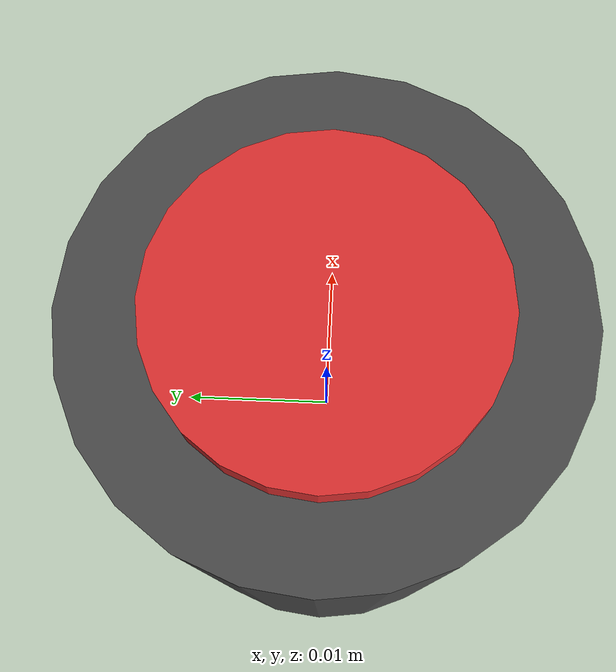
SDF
<?xml version="1.0" ?>
<!--
  Proximity Sensor for Assembly Line
  IR-style proximity sensor for distance measurement.
-->
<sdf version="1.6">
  <model name="proximity_sensor">
    <static>true</static>

    <link name="sensor_link">
      <pose>0 0 0 0 0 0</pose>

      <!-- Sensor housing -->
      <visual name="housing_visual">
        <geometry>
          <cylinder>
            <radius>0.015</radius>
            <length>0.04</length>
          </cylinder>
        </geometry>
        <material>
          <ambient>0.2 0.2 0.2 1</ambient>
          <diffuse>0.3 0.3 0.3 1</diffuse>
        </material>
      </visual>

      <collision name="housing_collision">
        <geometry>
          <cylinder>
            <radius>0.015</radius>
            <length>0.04</length>
          </cylinder>
        </geometry>
      </collision>

      <!-- Sensor face (lens) -->
      <visual name="lens_visual">
        <pose>0 0 0.02 0 0 0</pose>
        <geometry>
          <cylinder>
            <radius>0.01</radius>
            <length>0.005</length>
          </cylinder>
        </geometry>
        <material>
          <ambient>0.8 0.1 0.1 1</ambient>
          <diffuse>0.9 0.2 0.2 1</diffuse>
          <emissive>0.3 0.0 0.0 1</emissive>
        </material>
      </visual>

      <!-- Proximity sensor (ray) -->
      <sensor name="proximity" type="ray">
        <pose>0 0 0.025 0 0 0</pose>
        <always_on>true</always_on>
        <update_rate>50</update_rate>
        <visualize>true</visualize>

        <ray>
          <scan>
            <horizontal>
              <samples>1</samples>
              <resolution>1</resolution>
              <min_angle>0</min_angle>
              <max_angle>0</max_angle>
            </horizontal>
          </scan>
          <range>
            <min>0.02</min>
            <max>0.5</max>
            <resolution>0.001</resolution>
          </range>
          <noise>
            <type>gaussian</type>
            <mean>0</mean>
            <stddev>0.005</stddev>
          </noise>
        </ray>

        <plugin name="proximity_sensor_plugin" filename="libgazebo_ros_ray_sensor.so">
          <ros>
            <namespace>station</namespace>
            <remapping>~/out:=proximity</remapping>
          </ros>
          <output_type>sensor_msgs/Range</output_type>
          <frame_name>proximity_frame</frame_name>
        </plugin>
      </sensor>
    </link>

  </model>
</sdf>
